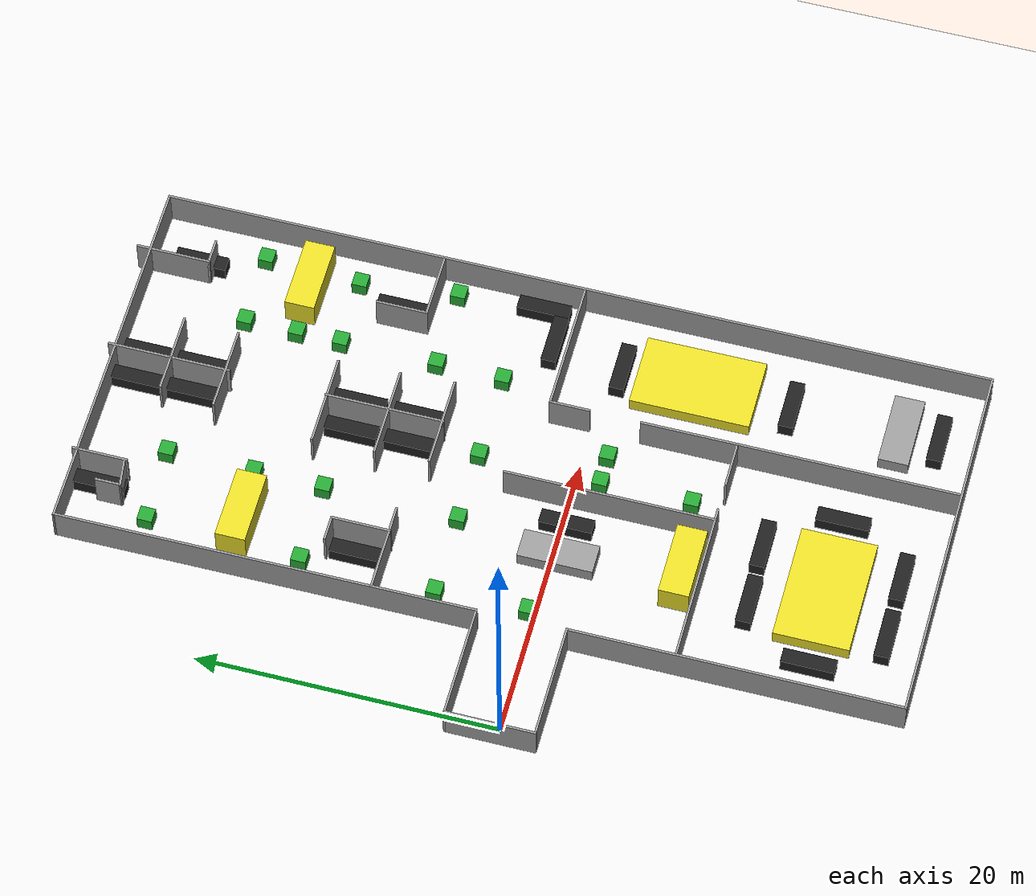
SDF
<sdf version="1.6">
 <world name="default">
  <light name="sun" type="directional">
   <pose>0 0 10 0 -0 0</pose>
   <diffuse>0.8 0.8 0.8 1</diffuse>
   <specular>0.2 0.2 0.2 1</specular>
   <attenuation>
    <range>1000</range>
    <constant>0.9</constant>
    <linear>0.01</linear>
    <quadratic>0.001</quadratic>
   </attenuation>
   <direction>-0.5 0.1 -0.9</direction>
  </light>
  <model name="ground_plane">
   <static>1</static>
   <link name="link">
    <collision name="collision">
     <geometry><plane><normal>0 0 1</normal><size>100 100</size></plane></geometry>
     <surface>
      <contact><collide_bitmask>65535</collide_bitmask></contact>
      <friction><ode><mu>100</mu><mu2>50</mu2></ode></friction>
     </surface>
    </collision>
    <visual name="visual">
     <cast_shadows>0</cast_shadows>
     <geometry><plane><normal>0 0 1</normal><size>100 100</size></plane></geometry>
     <material>
      <script><uri>file://media/materials/scripts/gazebo.material</uri><name>Gazebo/White</name></script>
     </material>
    </visual>
   </link>
  </model>
  <gravity>0 0 -9.8</gravity>
  <magnetic_field>6e-06 2.3e-05 -4.2e-05</magnetic_field>
  <atmosphere type="adiabatic"/>
  <physics name="default_physics" default="0" type="ode">
   <max_step_size>0.001</max_step_size>
   <real_time_factor>1</real_time_factor>
   <real_time_update_rate>1000</real_time_update_rate>
  </physics>
  <scene><ambient>0.4 0.4 0.4 1</ambient><background>0.7 0.7 0.7 1</background><shadows>1</shadows></scene>
  <audio><device>default</device></audio>
  <spherical_coordinates>
   <surface_model>EARTH_WGS84</surface_model>
   <latitude_deg>0</latitude_deg>
   <longitude_deg>0</longitude_deg>
   <elevation>0</elevation>
   <heading_deg>0</heading_deg>
  </spherical_coordinates>
  <model name="unit_box_0">
   <pose>8.5907 0.483494 0.499995 1e-05 -0 0</pose>
   <link name="link">
    <inertial>
     <mass>1</mass>
     <inertia>
      <ixx>0.166667</ixx>
      <ixy>0</ixy>
      <ixz>0</ixz>
      <iyy>0.166667</iyy>
      <iyz>0</iyz>
      <izz>0.166667</izz>
     </inertia>
    </inertial>
    <collision name="collision"><geometry><box><size>1 1 1</size></box></geometry></collision>
    <visual name="visual">
     <geometry><box><size>1 1 1</size></box></geometry>
     <material>
      <script><name>Gazebo/Green</name><uri>file://media/materials/scripts/gazebo.material</uri></script>
     </material>
    </visual>
   </link>
  </model>
  <model name="unit_box_1">
   <pose>8.42449 6.54835 0.499995 1e-05 -0 0</pose>
   <link name="link">
    <inertial>
     <mass>1</mass>
     <inertia>
      <ixx>0.166667</ixx>
      <ixy>0</ixy>
      <ixz>0</ixz>
      <iyy>0.166667</iyy>
      <iyz>0</iyz>
      <izz>0.166667</izz>
     </inertia>
    </inertial>
    <collision name="collision"><geometry><box><size>1 1 1</size></box></geometry></collision>
    <visual name="visual">
     <geometry><box><size>1 1 1</size></box></geometry>
     <material>
      <script><name>Gazebo/Green</name><uri>file://media/materials/scripts/gazebo.material</uri></script>
     </material>
    </visual>
   </link>
  </model>
  <model name="unit_box_2">
   <pose>14 6.54082 0.499995 0 1e-05 0</pose>
   <link name="link">
    <inertial>
     <mass>1</mass>
     <inertia>
      <ixx>0.166667</ixx>
      <ixy>0</ixy>
      <ixz>0</ixz>
      <iyy>0.166667</iyy>
      <iyz>0</iyz>
      <izz>0.166667</izz>
     </inertia>
    </inertial>
    <collision name="collision"><geometry><box><size>1 1 1</size></box></geometry></collision>
    <visual name="visual">
     <geometry><box><size>1 1 1</size></box></geometry>
     <material>
      <script><name>Gazebo/Green</name><uri>file://media/materials/scripts/gazebo.material</uri></script>
     </material>
    </visual>
   </link>
  </model>
  <model name="unit_box_3">
   <pose>19 6.5 0.499995 1e-05 -0 0</pose>
   <link name="link">
    <inertial>
     <mass>1</mass>
     <inertia>
      <ixx>0.166667</ixx>
      <ixy>0</ixy>
      <ixz>0</ixz>
      <iyy>0.166667</iyy>
      <iyz>0</iyz>
      <izz>0.166667</izz>
     </inertia>
    </inertial>
    <collision name="collision"><geometry><box><size>1 1 1</size></box></geometry></collision>
    <visual name="visual">
     <geometry><box><size>1 1 1</size></box></geometry>
     <material>
      <script><name>Gazebo/Green</name><uri>file://media/materials/scripts/gazebo.material</uri></script>
     </material>
    </visual>
   </link>
  </model>
  <model name="unit_box_4">
   <pose>24.9347 6.51333 0.499995 1e-05 -0 0</pose>
   <link name="link">
    <inertial>
     <mass>1</mass>
     <inertia>
      <ixx>0.166667</ixx>
      <ixy>0</ixy>
      <ixz>0</ixz>
      <iyy>0.166667</iyy>
      <iyz>0</iyz>
      <izz>0.166667</izz>
     </inertia>
    </inertial>
    <collision name="collision"><geometry><box><size>1 1 1</size></box></geometry></collision>
    <visual name="visual">
     <geometry><box><size>1 1 1</size></box></geometry>
     <material>
      <script><name>Gazebo/Green</name><uri>file://media/materials/scripts/gazebo.material</uri></script>
     </material>
    </visual>
   </link>
  </model>
  <model name="unit_box_5">
   <pose>25 11 0.499995 1e-05 -0 2e-06</pose>
   <link name="link">
    <inertial>
     <mass>1</mass>
     <inertia>
      <ixx>0.166667</ixx>
      <ixy>0</ixy>
      <ixz>0</ixz>
      <iyy>0.166667</iyy>
      <iyz>0</iyz>
      <izz>0.166667</izz>
     </inertia>
    </inertial>
    <collision name="collision"><geometry><box><size>1 1 1</size></box></geometry></collision>
    <visual name="visual">
     <geometry><box><size>1 1 1</size></box></geometry>
     <material>
      <script><name>Gazebo/Green</name><uri>file://media/materials/scripts/gazebo.material</uri></script>
     </material>
    </visual>
   </link>
  </model>
  <model name="unit_box_6">
   <pose>30.5176 11 0.499995 1e-05 -0 0</pose>
   <link name="link">
    <inertial>
     <mass>1</mass>
     <inertia>
      <ixx>0.166667</ixx>
      <ixy>0</ixy>
      <ixz>0</ixz>
      <iyy>0.166667</iyy>
      <iyz>0</iyz>
      <izz>0.166667</izz>
     </inertia>
    </inertial>
    <collision name="collision"><geometry><box><size>1 1 1</size></box></geometry></collision>
    <visual name="visual">
     <geometry><box><size>1 1 1</size></box></geometry>
     <material>
      <script><name>Gazebo/Green</name><uri>file://media/materials/scripts/gazebo.material</uri></script>
     </material>
    </visual>
   </link>
  </model>
  <model name="unit_box_8">
   <pose>21 -1.55682 0.499995 1e-05 -0 0</pose>
   <link name="link">
    <inertial>
     <mass>1</mass>
     <inertia>
      <ixx>0.166667</ixx>
      <ixy>0</ixy>
      <ixz>0</ixz>
      <iyy>0.166667</iyy>
      <iyz>0</iyz>
      <izz>0.166667</izz>
     </inertia>
    </inertial>
    <collision name="collision"><geometry><box><size>1 1 1</size></box></geometry></collision>
    <visual name="visual">
     <geometry><box><size>1 1 1</size></box></geometry>
     <material>
      <script><name>Gazebo/Green</name><uri>file://media/materials/scripts/gazebo.material</uri></script>
     </material>
    </visual>
   </link>
  </model>
  <model name="unit_box_9">
   <pose>19 -7.65932 0.499995 1e-05 -0 0</pose>
   <link name="link">
    <inertial>
     <mass>1</mass>
     <inertia>
      <ixx>0.166667</ixx>
      <ixy>0</ixy>
      <ixz>0</ixz>
      <iyy>0.166667</iyy>
      <iyz>0</iyz>
      <izz>0.166667</izz>
     </inertia>
    </inertial>
    <collision name="collision"><geometry><box><size>1 1 1</size></box></geometry></collision>
    <visual name="visual">
     <geometry><box><size>1 1 1</size></box></geometry>
     <material>
      <script><name>Gazebo/Green</name><uri>file://media/materials/scripts/gazebo.material</uri></script>
     </material>
    </visual>
   </link>
  </model>
  <model name="unit_box_10">
   <pose>25 17.5 0.499995 1e-05 -0 0</pose>
   <link name="link">
    <inertial>
     <mass>1</mass>
     <inertia>
      <ixx>0.166667</ixx>
      <ixy>0</ixy>
      <ixz>0</ixz>
      <iyy>0.166667</iyy>
      <iyz>0</iyz>
      <izz>0.166667</izz>
     </inertia>
    </inertial>
    <collision name="collision"><geometry><box><size>1 1 1</size></box></geometry></collision>
    <visual name="visual">
     <geometry><box><size>1 1 1</size></box></geometry>
     <material>
      <script><name>Gazebo/Green</name><uri>file://media/materials/scripts/gazebo.material</uri></script>
     </material>
    </visual>
   </link>
  </model>
  <model name="unit_box_11">
   <pose>25 20.4899 0.5 0 -0 0</pose>
   <link name="link">
    <inertial>
     <mass>1</mass>
     <inertia>
      <ixx>0.166667</ixx>
      <ixy>0</ixy>
      <ixz>0</ixz>
      <iyy>0.166667</iyy>
      <iyz>0</iyz>
      <izz>0.166667</izz>
     </inertia>
    </inertial>
    <collision name="collision"><geometry><box><size>1 1 1</size></box></geometry></collision>
    <visual name="visual">
     <geometry><box><size>1 1 1</size></box></geometry>
     <material>
      <script><name>Gazebo/Green</name><uri>file://media/materials/scripts/gazebo.material</uri></script>
     </material>
    </visual>
   </link>
  </model>
  <model name="unit_box_12">
   <pose>25 24 0.499995 0 1e-05 0</pose>
   <link name="link">
    <inertial>
     <mass>1</mass>
     <inertia>
      <ixx>0.166667</ixx>
      <ixy>0</ixy>
      <ixz>0</ixz>
      <iyy>0.166667</iyy>
      <iyz>0</iyz>
      <izz>0.166667</izz>
     </inertia>
    </inertial>
    <collision name="collision"><geometry><box><size>1 1 1</size></box></geometry></collision>
    <visual name="visual">
     <geometry><box><size>1 1 1</size></box></geometry>
     <material>
      <script><name>Gazebo/Green</name><uri>file://media/materials/scripts/gazebo.material</uri></script>
     </material>
    </visual>
   </link>
  </model>
  <model name="unit_box_13">
   <pose>29.7257 17.5 0.499995 0 1e-05 0</pose>
   <link name="link">
    <inertial>
     <mass>1</mass>
     <inertia>
      <ixx>0.166667</ixx>
      <ixy>0</ixy>
      <ixz>0</ixz>
      <iyy>0.166667</iyy>
      <iyz>0</iyz>
      <izz>0.166667</izz>
     </inertia>
    </inertial>
    <collision name="collision"><geometry><box><size>1 1 1</size></box></geometry></collision>
    <visual name="visual">
     <geometry><box><size>1 1 1</size></box></geometry>
     <material>
      <script><name>Gazebo/Green</name><uri>file://media/materials/scripts/gazebo.material</uri></script>
     </material>
    </visual>
   </link>
  </model>
  <model name="unit_box_14">
   <pose>30 24 0.499995 1e-05 -0 0</pose>
   <link name="link">
    <inertial>
     <mass>1</mass>
     <inertia>
      <ixx>0.166667</ixx>
      <ixy>0</ixy>
      <ixz>0</ixz>
      <iyy>0.166667</iyy>
      <iyz>0</iyz>
      <izz>0.166667</izz>
     </inertia>
    </inertial>
    <collision name="collision"><geometry><box><size>1 1 1</size></box></geometry></collision>
    <visual name="visual">
     <geometry><box><size>1 1 1</size></box></geometry>
     <material>
      <script><name>Gazebo/Green</name><uri>file://media/materials/scripts/gazebo.material</uri></script>
     </material>
    </visual>
   </link>
  </model>
  <model name="unit_box_15">
   <pose>14 20.1761 0.499995 0 1e-05 0</pose>
   <link name="link">
    <inertial>
     <mass>1</mass>
     <inertia>
      <ixx>0.166667</ixx>
      <ixy>0</ixy>
      <ixz>0</ixz>
      <iyy>0.166667</iyy>
      <iyz>0</iyz>
      <izz>0.166667</izz>
     </inertia>
    </inertial>
    <collision name="collision"><geometry><box><size>1 1 1</size></box></geometry></collision>
    <visual name="visual">
     <geometry><box><size>1 1 1</size></box></geometry>
     <material>
      <script><name>Gazebo/Green</name><uri>file://media/materials/scripts/gazebo.material</uri></script>
     </material>
    </visual>
   </link>
  </model>
  <model name="unit_box_16">
   <pose>14 15.5 0.499995 1e-05 -0 0</pose>
   <link name="link">
    <inertial>
     <mass>1</mass>
     <inertia>
      <ixx>0.166667</ixx>
      <ixy>0</ixy>
      <ixz>0</ixz>
      <iyy>0.166667</iyy>
      <iyz>0</iyz>
      <izz>0.166667</izz>
     </inertia>
    </inertial>
    <collision name="collision"><geometry><box><size>1 1 1</size></box></geometry></collision>
    <visual name="visual">
     <geometry><box><size>1 1 1</size></box></geometry>
     <material>
      <script><name>Gazebo/Green</name><uri>file://media/materials/scripts/gazebo.material</uri></script>
     </material>
    </visual>
   </link>
  </model>
  <model name="unit_box_17">
   <pose>14 26 0.499995 1e-05 -0 0</pose>
   <link name="link">
    <inertial>
     <mass>1</mass>
     <inertia>
      <ixx>0.166667</ixx>
      <ixy>0</ixy>
      <ixz>0</ixz>
      <iyy>0.166667</iyy>
      <iyz>0</iyz>
      <izz>0.166667</izz>
     </inertia>
    </inertial>
    <collision name="collision"><geometry><box><size>1 1 1</size></box></geometry></collision>
    <visual name="visual">
     <geometry><box><size>1 1 1</size></box></geometry>
     <material>
      <script><name>Gazebo/Green</name><uri>file://media/materials/scripts/gazebo.material</uri></script>
     </material>
    </visual>
   </link>
  </model>
  <model name="unit_box_18">
   <pose>8.86475 25.8424 0.499995 1e-05 0 -0.000109</pose>
   <link name="link">
    <inertial>
     <mass>1</mass>
     <inertia>
      <ixx>0.166667</ixx>
      <ixy>0</ixy>
      <ixz>0</ixz>
      <iyy>0.166667</iyy>
      <iyz>0</iyz>
      <izz>0.166667</izz>
     </inertia>
    </inertial>
    <collision name="collision"><geometry><box><size>1 1 1</size></box></geometry></collision>
    <visual name="visual">
     <geometry><box><size>1 1 1</size></box></geometry>
     <material>
      <script><name>Gazebo/Green</name><uri>file://media/materials/scripts/gazebo.material</uri></script>
     </material>
    </visual>
   </link>
  </model>
  <model name="unit_box_19">
   <pose>8.49751 15.5 0.499995 0 1e-05 0</pose>
   <link name="link">
    <inertial>
     <mass>1</mass>
     <inertia>
      <ixx>0.166667</ixx>
      <ixy>0</ixy>
      <ixz>0</ixz>
      <iyy>0.166667</iyy>
      <iyz>0</iyz>
      <izz>0.166667</izz>
     </inertia>
    </inertial>
    <collision name="collision"><geometry><box><size>1 1 1</size></box></geometry></collision>
    <visual name="visual">
     <geometry><box><size>1 1 1</size></box></geometry>
     <material>
      <script><name>Gazebo/Green</name><uri>file://media/materials/scripts/gazebo.material</uri></script>
     </material>
    </visual>
   </link>
  </model>
  <model name="unit_box_20">
   <pose>18.9739 -1.58777 0.499995 1e-05 -0 0</pose>
   <link name="link">
    <inertial>
     <mass>1</mass>
     <inertia>
      <ixx>0.166667</ixx>
      <ixy>0</ixy>
      <ixz>0</ixz>
      <iyy>0.166667</iyy>
      <iyz>0</iyz>
      <izz>0.166667</izz>
     </inertia>
    </inertial>
    <collision name="collision"><geometry><box><size>1 1 1</size></box></geometry></collision>
    <visual name="visual">
     <geometry><box><size>1 1 1</size></box></geometry>
     <material>
      <script><name>Gazebo/Green</name><uri>file://media/materials/scripts/gazebo.material</uri></script>
     </material>
    </visual>
   </link>
  </model>
  <model name="office_1">
   <pose>15.4743 3.41032 0 0 -0 0</pose>
   <link name="Wall_0">
    <collision name="Wall_0_Collision">
     <geometry><box><size>7.75 0.15 2.5</size></box></geometry>
     <pose>0 0 1.25 0 -0 0</pose>
    </collision>
    <visual name="Wall_0_Visual">
     <pose>0 0 1.25 0 -0 0</pose>
     <geometry><box><size>7.75 0.15 2.5</size></box></geometry>
     <material>
      <script><uri>file://media/materials/scripts/gazebo.material</uri><name>Gazebo/Grey</name></script>
      <ambient>1 1 1 1</ambient>
     </material>
     <meta><layer>0</layer></meta>
    </visual>
    <pose>-12.5043 -5.95032 0 0 -0 0</pose>
   </link>
   <link name="Wall_10">
    <collision name="Wall_10_Collision">
     <geometry><box><size>6 0.15 2.5</size></box></geometry>
     <pose>0 0 1.25 0 -0 0</pose>
    </collision>
    <visual name="Wall_10_Visual">
     <pose>0 0 1.25 0 -0 0</pose>
     <geometry><box><size>6 0.15 2.5</size></box></geometry>
     <material>
      <script><uri>file://media/materials/scripts/gazebo.material</uri><name>Gazebo/Grey</name></script>
      <ambient>1 1 1 1</ambient>
     </material>
     <meta><layer>0</layer></meta>
    </visual>
    <pose>-16.3956 -3.00177 0 0 -0 -1.5708</pose>
   </link>
   <link name="Wall_2">
    <collision name="Wall_2_Collision">
     <geometry><box><size>22 0.15 2.5</size></box></geometry>
     <pose>0 0 1.25 0 -0 0</pose>
    </collision>
    <visual name="Wall_2_Visual">
     <pose>0 0 1.25 0 -0 0</pose>
     <geometry><box><size>22 0.15 2.5</size></box></geometry>
     <material>
      <script><uri>file://media/materials/scripts/gazebo.material</uri><name>Gazebo/Grey</name></script>
      <ambient>1 1 1 1</ambient>
     </material>
     <meta><layer>0</layer></meta>
    </visual>
    <pose>-8.70435 -16.8753 0 0 -0 -1.5708</pose>
   </link>
   <link name="Wall_3">
    <collision name="Wall_3_Collision">
     <geometry><box><size>25.25 0.15 2.5</size></box></geometry>
     <pose>0 0 1.25 0 -0 0</pose>
    </collision>
    <visual name="Wall_3_Visual">
     <pose>0 0 1.25 0 -0 0</pose>
     <geometry><box><size>25.25 0.15 2.5</size></box></geometry>
     <material>
      <script><uri>file://media/materials/scripts/gazebo.material</uri><name>Gazebo/Grey</name></script>
      <ambient>1 1 1 1</ambient>
     </material>
     <meta><layer>0</layer></meta>
    </visual>
    <pose>3.84565 -27.8003 0 0 -0 0</pose>
   </link>
   <link name="Wall_5">
    <collision name="Wall_5_Collision">
     <geometry><box><size>55.75 0.15 2.5</size></box></geometry>
     <pose>0 0 1.25 0 -0 0</pose>
    </collision>
    <visual name="Wall_5_Visual">
     <pose>0 0 1.25 0 -0 0</pose>
     <geometry><box><size>55.75 0.15 2.5</size></box></geometry>
     <material>
      <script><uri>file://media/materials/scripts/gazebo.material</uri><name>Gazebo/Grey</name></script>
      <ambient>1 1 1 1</ambient>
     </material>
     <meta><layer>0</layer></meta>
    </visual>
    <pose>16.3957 -0.000322 0 0 -0 1.5708</pose>
   </link>
   <link name="Wall_6">
    <collision name="Wall_6_Collision">
     <geometry><box><size>25.5 0.15 2.5</size></box></geometry>
     <pose>0 0 1.25 0 -0 0</pose>
    </collision>
    <visual name="Wall_6_Visual">
     <pose>0 0 1.25 0 -0 0</pose>
     <geometry><box><size>25.5 0.15 2.5</size></box></geometry>
     <material>
      <script><uri>file://media/materials/scripts/gazebo.material</uri><name>Gazebo/Grey</name></script>
      <ambient>1 1 1 1</ambient>
     </material>
     <meta><layer>0</layer></meta>
    </visual>
    <pose>3.72065 27.7997 0 0 -0 3.14159</pose>
   </link>
   <link name="Wall_7">
    <collision name="Wall_7_Collision">
     <geometry><box><size>28.0269 0.15 2.5</size></box></geometry>
     <pose>0 0 1.25 0 -0 0</pose>
    </collision>
    <visual name="Wall_7_Visual">
     <pose>0 0 1.25 0 -0 0</pose>
     <geometry><box><size>28.0269 0.15 2.5</size></box></geometry>
     <material>
      <script><uri>file://media/materials/scripts/gazebo.material</uri><name>Gazebo/Grey</name></script>
      <ambient>1 1 1 1</ambient>
     </material>
     <meta><layer>0</layer></meta>
    </visual>
    <pose>-8.88935 13.8617 0 0 -0 -1.56613</pose>
   </link>
   <link name="Wall_8">
    <collision name="Wall_8_Collision">
     <geometry><box><size>7.7213 0.15 2.5</size></box></geometry>
     <pose>0 0 1.25 0 -0 0</pose>
    </collision>
    <visual name="Wall_8_Visual">
     <pose>0 0 1.25 0 -0 0</pose>
     <geometry><box><size>7.7213 0.15 2.5</size></box></geometry>
     <material>
      <script><uri>file://media/materials/scripts/gazebo.material</uri><name>Gazebo/Grey</name></script>
      <ambient>1 1 1 1</ambient>
     </material>
     <meta><layer>0</layer></meta>
    </visual>
    <pose>-12.61 -0.076547 0 0 -0 -3.14153</pose>
   </link>
   <static>1</static>
  </model>
  <model name="office_2">
   <pose>19.223 3.91729 0 0 -0 0</pose>
   <link name="Wall_11">
    <collision name="Wall_11_Collision">
     <geometry><box><size>6.5 0.15 2.5</size></box></geometry>
     <pose>0 0 1.25 0 -0 0</pose>
    </collision>
    <visual name="Wall_11_Visual">
     <pose>0 0 1.25 0 -0 0</pose>
     <geometry><box><size>6.5 0.15 2.5</size></box></geometry>
     <material>
      <script><uri>file://media/materials/scripts/gazebo.material</uri><name>Gazebo/Grey</name></script>
      <ambient>1 1 1 1</ambient>
     </material>
     <meta><layer>0</layer></meta>
    </visual>
    <pose>3.61683 -10.3722 0 0 -0 1.5708</pose>
   </link>
   <link name="Wall_13">
    <collision name="Wall_13_Collision">
     <geometry><box><size>2.75 0.15 2.5</size></box></geometry>
     <pose>0 0 1.25 0 -0 0</pose>
    </collision>
    <visual name="Wall_13_Visual">
     <pose>0 0 1.25 0 -0 0</pose>
     <geometry><box><size>2.75 0.15 2.5</size></box></geometry>
     <material>
      <script><uri>file://media/materials/scripts/gazebo.material</uri><name>Gazebo/Grey</name></script>
      <ambient>1 1 1 1</ambient>
     </material>
     <meta><layer>0</layer></meta>
    </visual>
    <pose>3.64403 -2.41016 0 0 -0 1.5708</pose>
   </link>
   <link name="Wall_14">
    <collision name="Wall_14_Collision">
     <geometry><box><size>9 0.15 2.5</size></box></geometry>
     <pose>0 0 1.25 0 -0 0</pose>
    </collision>
    <visual name="Wall_14_Visual">
     <pose>0 0 1.25 0 -0 0</pose>
     <geometry><box><size>9 0.15 2.5</size></box></geometry>
     <material>
      <script><uri>file://media/materials/scripts/gazebo.material</uri><name>Gazebo/Grey</name></script>
      <ambient>1 1 1 1</ambient>
     </material>
     <meta><layer>0</layer></meta>
    </visual>
    <pose>8.06904 -1.11016 0 0 -0 0</pose>
   </link>
   <link name="Wall_20">
    <collision name="Wall_20_Collision">
     <geometry><box><size>14 0.15 2.5</size></box></geometry>
     <pose>0 0 1.25 0 -0 0</pose>
    </collision>
    <visual name="Wall_20_Visual">
     <pose>0 0 1.25 0 -0 0</pose>
     <geometry><box><size>14 0.15 2.5</size></box></geometry>
     <material>
      <script><uri>file://media/materials/scripts/gazebo.material</uri><name>Gazebo/Grey</name></script>
      <ambient>1 1 1 1</ambient>
     </material>
     <meta><layer>0</layer></meta>
    </visual>
    <pose>-2.23045 -6.54514 0 0 -0 1.5708</pose>
   </link>
   <link name="Wall_29">
    <collision name="Wall_29_Collision">
     <geometry><box><size>6 0.15 2.5</size></box></geometry>
     <pose>0 0 1.25 0 -0 0</pose>
    </collision>
    <visual name="Wall_29_Visual">
     <pose>0 0 1.25 0 -0 0</pose>
     <geometry><box><size>6 0.15 2.5</size></box></geometry>
     <material>
      <script><uri>file://media/materials/scripts/gazebo.material</uri><name>Gazebo/Grey</name></script>
      <ambient>1 1 1 1</ambient>
     </material>
     <meta><layer>0</layer></meta>
    </visual>
    <pose>-9.61448 6.29314 0 0 -0 0</pose>
   </link>
   <link name="Wall_3">
    <collision name="Wall_3_Collision">
     <geometry><box><size>11 0.15 2.5</size></box></geometry>
     <pose>0 0 1.25 0 -0 0</pose>
    </collision>
    <visual name="Wall_3_Visual">
     <pose>0 0 1.25 0 -0 0</pose>
     <geometry><box><size>11 0.15 2.5</size></box></geometry>
     <material>
      <script><uri>file://media/materials/scripts/gazebo.material</uri><name>Gazebo/Grey</name></script>
      <ambient>1 1 1 1</ambient>
     </material>
     <meta><layer>0</layer></meta>
    </visual>
    <pose>-6.89347 -13.5267 0 0 -0 0</pose>
   </link>
   <link name="Wall_32">
    <collision name="Wall_32_Collision">
     <geometry><box><size>4 0.15 2.5</size></box></geometry>
     <pose>0 0 1.25 0 -0 0</pose>
    </collision>
    <visual name="Wall_32_Visual">
     <pose>0 0 1.25 0 -0 0</pose>
     <geometry><box><size>4 0.15 2.5</size></box></geometry>
     <material>
      <script><uri>file://media/materials/scripts/gazebo.material</uri><name>Gazebo/Grey</name></script>
      <ambient>1 1 1 1</ambient>
     </material>
     <meta><layer>0</layer></meta>
    </visual>
    <pose>-8.37317 8.17348 0 0 -0 1.5708</pose>
   </link>
   <link name="Wall_33">
    <collision name="Wall_33_Collision">
     <geometry><box><size>1.75 0.15 2.5</size></box></geometry>
     <pose>0 0 1.25 0 -0 0</pose>
    </collision>
    <visual name="Wall_33_Visual">
     <pose>0 0 1.25 0 -0 0</pose>
     <geometry><box><size>1.75 0.15 2.5</size></box></geometry>
     <material>
      <script><uri>file://media/materials/scripts/gazebo.material</uri><name>Gazebo/Grey</name></script>
      <ambient>1 1 1 1</ambient>
     </material>
     <meta><layer>0</layer></meta>
    </visual>
    <pose>-9.17316 10.0985 0 0 -0 3.14159</pose>
   </link>
   <link name="Wall_47">
    <collision name="Wall_47_Collision">
     <geometry><box><size>3.75 0.15 2.5</size></box></geometry>
     <pose>0 0 1.25 0 -0 0</pose>
    </collision>
    <visual name="Wall_47_Visual">
     <pose>0 0 1.25 0 -0 0</pose>
     <geometry><box><size>3.75 0.15 2.5</size></box></geometry>
     <material>
      <script><uri>file://media/materials/scripts/gazebo.material</uri><name>Gazebo/Grey</name></script>
      <ambient>1 1 1 1</ambient>
     </material>
     <meta><layer>0</layer></meta>
    </visual>
    <pose>-7.63999 25.7901 0 0 -0 -1.5708</pose>
   </link>
   <link name="Wall_48">
    <collision name="Wall_48_Collision">
     <geometry><box><size>2.05601 0.15 2.5</size></box></geometry>
     <pose>0 0 1.25 0 -0 0</pose>
    </collision>
    <visual name="Wall_48_Visual">
     <pose>0 0 1.25 0 -0 0</pose>
     <geometry><box><size>2.05601 0.15 2.5</size></box></geometry>
     <material>
      <script><uri>file://media/materials/scripts/gazebo.material</uri><name>Gazebo/Grey</name></script>
      <ambient>1 1 1 1</ambient>
     </material>
     <meta><layer>0</layer></meta>
    </visual>
    <pose>-8.5823 23.9901 0 0 -0 -2.9917</pose>
   </link>
   <link name="Wall_49">
    <collision name="Wall_49_Collision">
     <geometry><box><size>1.75 0.15 2.5</size></box></geometry>
     <pose>0 0 1.25 0 -0 0</pose>
    </collision>
    <visual name="Wall_49_Visual">
     <pose>0 0 1.25 0 -0 0</pose>
     <geometry><box><size>1.75 0.15 2.5</size></box></geometry>
     <material>
      <script><uri>file://media/materials/scripts/gazebo.material</uri><name>Gazebo/Grey</name></script>
      <ambient>1 1 1 1</ambient>
     </material>
     <meta><layer>0</layer></meta>
    </visual>
    <pose>-9.52462 24.6478 0 0 -0 1.5708</pose>
   </link>
   <link name="Wall_57">
    <collision name="Wall_57_Collision">
     <geometry><box><size>5 0.15 2.5</size></box></geometry>
     <pose>0 0 1.25 0 -0 0</pose>
    </collision>
    <visual name="Wall_57_Visual">
     <pose>0 0 1.25 0 -0 0</pose>
     <geometry><box><size>5 0.15 2.5</size></box></geometry>
     <material>
      <script><uri>file://media/materials/scripts/gazebo.material</uri><name>Gazebo/Grey</name></script>
      <ambient>1 1 1 1</ambient>
     </material>
     <meta><layer>0</layer></meta>
    </visual>
    <pose>8.35473 25.7222 0 0 -0 -1.5708</pose>
   </link>
   <link name="Wall_58">
    <collision name="Wall_58_Collision">
     <geometry><box><size>1.75 0.15 2.5</size></box></geometry>
     <pose>0 0 1.25 0 -0 0</pose>
    </collision>
    <visual name="Wall_58_Visual">
     <pose>0 0 1.25 0 -0 0</pose>
     <geometry><box><size>1.75 0.15 2.5</size></box></geometry>
     <material>
      <script><uri>file://media/materials/scripts/gazebo.material</uri><name>Gazebo/Grey</name></script>
      <ambient>1 1 1 1</ambient>
     </material>
     <meta><layer>0</layer></meta>
    </visual>
    <pose>9.15472 23.2972 0 0 -0 0</pose>
   </link>
   <link name="Wall_60">
    <collision name="Wall_60_Collision">
     <geometry><box><size>8.25 0.15 2.5</size></box></geometry>
     <pose>0 0 1.25 0 -0 0</pose>
    </collision>
    <visual name="Wall_60_Visual">
     <pose>0 0 1.25 0 -0 0</pose>
     <geometry><box><size>8.25 0.15 2.5</size></box></geometry>
     <material>
      <script><uri>file://media/materials/scripts/gazebo.material</uri><name>Gazebo/Grey</name></script>
      <ambient>1 1 1 1</ambient>
     </material>
     <meta><layer>0</layer></meta>
    </visual>
    <pose>0.578927 23.6502 0 0 -0 -1.5708</pose>
   </link>
   <link name="Wall_65">
    <collision name="Wall_65_Collision">
     <geometry><box><size>5.75 0.15 2.5</size></box></geometry>
     <pose>0 0 1.25 0 -0 0</pose>
    </collision>
    <visual name="Wall_65_Visual">
     <pose>0 0 1.25 0 -0 0</pose>
     <geometry><box><size>5.75 0.15 2.5</size></box></geometry>
     <material>
      <script><uri>file://media/materials/scripts/gazebo.material</uri><name>Gazebo/Grey</name></script>
      <ambient>1 1 1 1</ambient>
     </material>
     <meta><layer>0</layer></meta>
    </visual>
    <pose>0.659823 19.8318 0 0 -0 0</pose>
   </link>
   <link name="Wall_69">
    <collision name="Wall_69_Collision">
     <geometry><box><size>5.5 0.15 2.5</size></box></geometry>
     <pose>0 0 1.25 0 -0 0</pose>
    </collision>
    <visual name="Wall_69_Visual">
     <pose>0 0 1.25 0 -0 0</pose>
     <geometry><box><size>5.5 0.15 2.5</size></box></geometry>
     <material>
      <script><uri>file://media/materials/scripts/gazebo.material</uri><name>Gazebo/Grey</name></script>
      <ambient>1 1 1 1</ambient>
     </material>
     <meta><layer>0</layer></meta>
    </visual>
    <pose>0.961778 23.5321 0 0 -0 0</pose>
   </link>
   <link name="Wall_71">
    <collision name="Wall_71_Collision">
     <geometry><box><size>8 0.15 2.5</size></box></geometry>
     <pose>0 0 1.25 0 -0 0</pose>
    </collision>
    <visual name="Wall_71_Visual">
     <pose>0 0 1.25 0 -0 0</pose>
     <geometry><box><size>8 0.15 2.5</size></box></geometry>
     <material>
      <script><uri>file://media/materials/scripts/gazebo.material</uri><name>Gazebo/Grey</name></script>
      <ambient>1 1 1 1</ambient>
     </material>
     <meta><layer>0</layer></meta>
    </visual>
    <pose>0.422198 9.09895 0 0 -0 -1.5708</pose>
   </link>
   <link name="Wall_73">
    <collision name="Wall_73_Collision">
     <geometry><box><size>6.25 0.15 2.5</size></box></geometry>
     <pose>0 0 1.25 0 -0 0</pose>
    </collision>
    <visual name="Wall_73_Visual">
     <pose>0 0 1.25 0 -0 0</pose>
     <geometry><box><size>6.25 0.15 2.5</size></box></geometry>
     <material>
      <script><uri>file://media/materials/scripts/gazebo.material</uri><name>Gazebo/Grey</name></script>
      <ambient>1 1 1 1</ambient>
     </material>
     <meta><layer>0</layer></meta>
    </visual>
    <pose>0.373353 5.22741 0 0 -0 0</pose>
   </link>
   <link name="Wall_8">
    <collision name="Wall_8_Collision">
     <geometry><box><size>3.25 0.15 2.5</size></box></geometry>
     <pose>0 0 1.25 0 -0 0</pose>
    </collision>
    <visual name="Wall_8_Visual">
     <pose>0 0 1.25 0 -0 0</pose>
     <geometry><box><size>3.25 0.15 2.5</size></box></geometry>
     <material>
      <script><uri>file://media/materials/scripts/gazebo.material</uri><name>Gazebo/Grey</name></script>
      <ambient>1 1 1 1</ambient>
     </material>
     <meta><layer>0</layer></meta>
    </visual>
    <pose>2.06683 -13.5472 0 0 -0 0</pose>
   </link>
   <link name="Wall_82">
    <collision name="Wall_82_Collision">
     <geometry><box><size>6.25 0.15 2.5</size></box></geometry>
     <pose>0 0 1.25 0 -0 0</pose>
    </collision>
    <visual name="Wall_82_Visual">
     <pose>0 0 1.25 0 -0 0</pose>
     <geometry><box><size>6.25 0.15 2.5</size></box></geometry>
     <material>
      <script><uri>file://media/materials/scripts/gazebo.material</uri><name>Gazebo/Grey</name></script>
      <ambient>1 1 1 1</ambient>
     </material>
     <meta><layer>0</layer></meta>
    </visual>
    <pose>0.163686 8.82451 0 0 -0 0</pose>
   </link>
   <link name="Wall_84">
    <collision name="Wall_84_Collision">
     <geometry><box><size>6.25 0.15 2.5</size></box></geometry>
     <pose>0 0 1.25 0 -0 0</pose>
    </collision>
    <visual name="Wall_84_Visual">
     <pose>0 0 1.25 0 -0 0</pose>
     <geometry><box><size>6.25 0.15 2.5</size></box></geometry>
     <material>
      <script><uri>file://media/materials/scripts/gazebo.material</uri><name>Gazebo/Grey</name></script>
      <ambient>1 1 1 1</ambient>
     </material>
     <meta><layer>0</layer></meta>
    </visual>
    <pose>0.015128 12.9567 0 0 -0 0</pose>
   </link>
   <link name="Wall_89">
    <collision name="Wall_89_Collision">
     <geometry><box><size>4.5 0.15 2.5</size></box></geometry>
     <pose>0 0 1.25 0 -0 0</pose>
    </collision>
    <visual name="Wall_89_Visual">
     <pose>0 0 1.25 0 -0 0</pose>
     <geometry><box><size>4.5 0.15 2.5</size></box></geometry>
     <material>
      <script><uri>file://media/materials/scripts/gazebo.material</uri><name>Gazebo/Grey</name></script>
      <ambient>1 1 1 1</ambient>
     </material>
     <meta><layer>0</layer></meta>
    </visual>
    <pose>10.3645 8.4266 0 0 -0 0</pose>
   </link>
   <link name="Wall_9">
    <collision name="Wall_9_Collision">
     <geometry><box><size>14.75 0.15 2.5</size></box></geometry>
     <pose>0 0 1.25 0 -0 0</pose>
    </collision>
    <visual name="Wall_9_Visual">
     <pose>0 0 1.25 0 -0 0</pose>
     <geometry><box><size>14.75 0.15 2.5</size></box></geometry>
     <material>
      <script><uri>file://media/materials/scripts/gazebo.material</uri><name>Gazebo/Grey</name></script>
      <ambient>1 1 1 1</ambient>
     </material>
     <meta><layer>0</layer></meta>
    </visual>
    <pose>3.61683 -20.8472 0 0 -0 -1.5708</pose>
   </link>
   <link name="Wall_91">
    <collision name="Wall_91_Collision">
     <geometry><box><size>3.5 0.15 2.5</size></box></geometry>
     <pose>0 0 1.25 0 -0 0</pose>
    </collision>
    <visual name="Wall_91_Visual">
     <pose>0 0 1.25 0 -0 0</pose>
     <geometry><box><size>3.5 0.15 2.5</size></box></geometry>
     <material>
      <script><uri>file://media/materials/scripts/gazebo.material</uri><name>Gazebo/Grey</name></script>
      <ambient>1 1 1 1</ambient>
     </material>
     <meta><layer>0</layer></meta>
    </visual>
    <pose>8.18948 10.1016 0 0 -0 1.5708</pose>
   </link>
   <static>1</static>
  </model>
  <model name="cabinet">
   <pose>10.554 19.9803 0.99882 0 0.000472 -2e-06</pose>
   <link name="link">
    <inertial>
     <mass>1</mass>
     <inertia>
      <ixx>0.166667</ixx>
      <ixy>0</ixy>
      <ixz>0</ixz>
      <iyy>0.166667</iyy>
      <iyz>0</iyz>
      <izz>0.166667</izz>
     </inertia>
    </inertial>
    <collision name="collision"><geometry><box><size>5 2 2</size></box></geometry></collision>
    <visual name="visual">
     <geometry><box><size>5 2 2</size></box></geometry>
     <material>
      <script><name>Gazebo/Yellow</name><uri>file://media/materials/scripts/gazebo.material</uri></script>
     </material>
    </visual>
   </link>
  </model>
  <model name="unit_box_21">
   <pose>27.7162 -5.86806 0.483136 -0.004219 -0 -0</pose>
   <link name="link">
    <inertial>
     <mass>1</mass>
     <inertia>
      <ixx>0.166667</ixx>
      <ixy>0</ixy>
      <ixz>0</ixz>
      <iyy>0.166667</iyy>
      <iyz>0</iyz>
      <izz>0.166667</izz>
     </inertia>
    </inertial>
    <collision name="collision"><geometry><box><size>5 8 1</size></box></geometry></collision>
    <visual name="visual">
     <geometry><box><size>5 8 1</size></box></geometry>
     <material>
      <script><name>Gazebo/Yellow</name><uri>file://media/materials/scripts/gazebo.material</uri></script>
     </material>
    </visual>
   </link>
  </model>
  <model name="cabinet_clone">
   <pose>28.6292 20.6379 0.99882 0 0.000472 2e-06</pose>
   <link name="link">
    <inertial>
     <mass>1</mass>
     <inertia>
      <ixx>0.166667</ixx>
      <ixy>0</ixy>
      <ixz>0</ixz>
      <iyy>0.166667</iyy>
      <iyz>0</iyz>
      <izz>0.166667</izz>
     </inertia>
    </inertial>
    <collision name="collision"><geometry><box><size>5 2 2</size></box></geometry></collision>
    <visual name="visual">
     <geometry><box><size>5 2 2</size></box></geometry>
     <material>
      <script><name>Gazebo/Yellow</name><uri>file://media/materials/scripts/gazebo.material</uri></script>
     </material>
    </visual>
   </link>
  </model>
  <model name="unit_box_21_clone">
   <pose>14.6997 -17.4409 0.483136 -0.004219 -0 -1.5708</pose>
   <link name="link">
    <inertial>
     <mass>1</mass>
     <inertia>
      <ixx>0.166667</ixx>
      <ixy>0</ixy>
      <ixz>0</ixz>
      <iyy>0.166667</iyy>
      <iyz>0</iyz>
      <izz>0.166667</izz>
     </inertia>
    </inertial>
    <collision name="collision"><geometry><box><size>5 8 1</size></box></geometry></collision>
    <visual name="visual">
     <geometry><box><size>5 8 1</size></box></geometry>
     <material>
      <script><name>Gazebo/Yellow</name><uri>file://media/materials/scripts/gazebo.material</uri></script>
     </material>
    </visual>
   </link>
  </model>
  <model name="unit_box_7">
   <pose>13.0472 -0.339498 0.497878 -0.000849 -0 -0</pose>
   <link name="link">
    <inertial>
     <mass>1</mass>
     <inertia>
      <ixx>0.166667</ixx>
      <ixy>0</ixy>
      <ixz>0</ixz>
      <iyy>0.166667</iyy>
      <iyz>0</iyz>
      <izz>0.166667</izz>
     </inertia>
    </inertial>
    <collision name="collision"><geometry><box><size>2 5 1</size></box></geometry></collision>
    <visual name="visual">
     <geometry><box><size>2 5 1</size></box></geometry>
     <material>
      <script><name>Gazebo/Grey</name><uri>file://media/materials/scripts/gazebo.material</uri></script>
     </material>
    </visual>
   </link>
  </model>
  <model name="cabinet_clone_clone">
   <pose>13.8176 -8.31913 0.99882 0 0.000472 2e-06</pose>
   <link name="link">
    <inertial>
     <mass>1</mass>
     <inertia>
      <ixx>0.166667</ixx>
      <ixy>0</ixy>
      <ixz>0</ixz>
      <iyy>0.166667</iyy>
      <iyz>0</iyz>
      <izz>0.166667</izz>
     </inertia>
    </inertial>
    <collision name="collision"><geometry><box><size>5 2 2</size></box></geometry></collision>
    <visual name="visual">
     <geometry><box><size>5 2 2</size></box></geometry>
     <material>
      <script><name>Gazebo/Yellow</name><uri>file://media/materials/scripts/gazebo.material</uri></script>
     </material>
    </visual>
   </link>
  </model>
  <model name="unit_box_clone">
   <pose>20.7214 14.9976 0.499937 -5.1e-05 -0 -0</pose>
   <link name="link">
    <inertial>
     <mass>1</mass>
     <inertia>
      <ixx>0.166667</ixx>
      <ixy>0</ixy>
      <ixz>0</ixz>
      <iyy>0.166667</iyy>
      <iyz>0</iyz>
      <izz>0.166667</izz>
     </inertia>
    </inertial>
    <collision name="collision"><geometry><box><size>2 2.5 1</size></box></geometry></collision>
    <visual name="visual">
     <geometry><box><size>1 3.5 1</size></box></geometry>
     <material>
      <script><name>Gazebo/Black</name><uri>file://media/materials/scripts/gazebo.material</uri></script>
     </material>
    </visual>
   </link>
  </model>
  <model name="unit_box_clone_clone">
   <pose>20.7205 11 0.499986 0 1.4e-05 0</pose>
   <link name="link">
    <inertial>
     <mass>1</mass>
     <inertia>
      <ixx>0.166667</ixx>
      <ixy>0</ixy>
      <ixz>0</ixz>
      <iyy>0.166667</iyy>
      <iyz>0</iyz>
      <izz>0.166667</izz>
     </inertia>
    </inertial>
    <collision name="collision"><geometry><box><size>2 2.5 1</size></box></geometry></collision>
    <visual name="visual">
     <geometry><box><size>1 3.5 1</size></box></geometry>
     <material>
      <script><name>Gazebo/Black</name><uri>file://media/materials/scripts/gazebo.material</uri></script>
     </material>
    </visual>
   </link>
  </model>
  <model name="unit_box_clone_clone_0">
   <pose>18.5688 14.9424 0.499937 -5.1e-05 -0 0.000255</pose>
   <link name="link">
    <inertial>
     <mass>1</mass>
     <inertia>
      <ixx>0.166667</ixx>
      <ixy>0</ixy>
      <ixz>0</ixz>
      <iyy>0.166667</iyy>
      <iyz>0</iyz>
      <izz>0.166667</izz>
     </inertia>
    </inertial>
    <collision name="collision"><geometry><box><size>2 2.5 1</size></box></geometry></collision>
    <visual name="visual">
     <geometry><box><size>1 3.5 1</size></box></geometry>
     <material>
      <script><name>Gazebo/Black</name><uri>file://media/materials/scripts/gazebo.material</uri></script>
     </material>
    </visual>
   </link>
  </model>
  <model name="unit_box_clone_clone_1">
   <pose>18.5701 11.0778 0.499937 -5.1e-05 -0 9e-06</pose>
   <link name="link">
    <inertial>
     <mass>1</mass>
     <inertia>
      <ixx>0.166667</ixx>
      <ixy>0</ixy>
      <ixz>0</ixz>
      <iyy>0.166667</iyy>
      <iyz>0</iyz>
      <izz>0.166667</izz>
     </inertia>
    </inertial>
    <collision name="collision"><geometry><box><size>2 2.5 1</size></box></geometry></collision>
    <visual name="visual">
     <geometry><box><size>1 3.5 1</size></box></geometry>
     <material>
      <script><name>Gazebo/Black</name><uri>file://media/materials/scripts/gazebo.material</uri></script>
     </material>
    </visual>
   </link>
  </model>
  <model name="unit_box_clone_clone_2">
   <pose>20.8779 29.2689 0.499937 -5.1e-05 -0 -0.000174</pose>
   <link name="link">
    <inertial>
     <mass>1</mass>
     <inertia>
      <ixx>0.166667</ixx>
      <ixy>0</ixy>
      <ixz>0</ixz>
      <iyy>0.166667</iyy>
      <iyz>0</iyz>
      <izz>0.166667</izz>
     </inertia>
    </inertial>
    <collision name="collision"><geometry><box><size>2 2.5 1</size></box></geometry></collision>
    <visual name="visual">
     <geometry><box><size>1 3.5 1</size></box></geometry>
     <material>
      <script><name>Gazebo/Black</name><uri>file://media/materials/scripts/gazebo.material</uri></script>
     </material>
    </visual>
   </link>
  </model>
  <model name="unit_box_clone_clone_3">
   <pose>20.8769 25.7332 0.499937 -5.1e-05 -0 -1e-06</pose>
   <link name="link">
    <inertial>
     <mass>1</mass>
     <inertia>
      <ixx>0.166667</ixx>
      <ixy>0</ixy>
      <ixz>0</ixz>
      <iyy>0.166667</iyy>
      <iyz>0</iyz>
      <izz>0.166667</izz>
     </inertia>
    </inertial>
    <collision name="collision"><geometry><box><size>2 2.5 1</size></box></geometry></collision>
    <visual name="visual">
     <geometry><box><size>1 3.5 1</size></box></geometry>
     <material>
      <script><name>Gazebo/Black</name><uri>file://media/materials/scripts/gazebo.material</uri></script>
     </material>
    </visual>
   </link>
  </model>
  <model name="unit_box_clone_clone_4">
   <pose>18.7261 29.4062 0.499937 5.1e-05 0 0.000149</pose>
   <link name="link">
    <inertial>
     <mass>1</mass>
     <inertia>
      <ixx>0.166667</ixx>
      <ixy>0</ixy>
      <ixz>0</ixz>
      <iyy>0.166667</iyy>
      <iyz>0</iyz>
      <izz>0.166667</izz>
     </inertia>
    </inertial>
    <collision name="collision"><geometry><box><size>2 2.5 1</size></box></geometry></collision>
    <visual name="visual">
     <geometry><box><size>1 3.5 1</size></box></geometry>
     <material>
      <script><name>Gazebo/Black</name><uri>file://media/materials/scripts/gazebo.material</uri></script>
     </material>
    </visual>
   </link>
  </model>
  <model name="unit_box_clone_clone_5">
   <pose>18.7263 25.6635 0.499937 5.1e-05 -0 0</pose>
   <link name="link">
    <inertial>
     <mass>1</mass>
     <inertia>
      <ixx>0.166667</ixx>
      <ixy>0</ixy>
      <ixz>0</ixz>
      <iyy>0.166667</iyy>
      <iyz>0</iyz>
      <izz>0.166667</izz>
     </inertia>
    </inertial>
    <collision name="collision"><geometry><box><size>2 2.5 1</size></box></geometry></collision>
    <visual name="visual">
     <geometry><box><size>1 3.5 1</size></box></geometry>
     <material>
      <script><name>Gazebo/Black</name><uri>file://media/materials/scripts/gazebo.material</uri></script>
     </material>
    </visual>
   </link>
  </model>
  <model name="unit_box_clone_clone_6">
   <pose>28.5984 28.0803 0.499937 5.1e-05 -0 7.8e-05</pose>
   <link name="link">
    <inertial>
     <mass>1</mass>
     <inertia>
      <ixx>0.166667</ixx>
      <ixy>0</ixy>
      <ixz>0</ixz>
      <iyy>0.166667</iyy>
      <iyz>0</iyz>
      <izz>0.166667</izz>
     </inertia>
    </inertial>
    <collision name="collision"><geometry><box><size>2 2.5 1</size></box></geometry></collision>
    <visual name="visual">
     <geometry><box><size>1 3.5 1</size></box></geometry>
     <material>
      <script><name>Gazebo/Black</name><uri>file://media/materials/scripts/gazebo.material</uri></script>
     </material>
    </visual>
   </link>
  </model>
  <model name="unit_box_clone_clone_7">
   <pose>28.488 14.2316 0.499937 -5.1e-05 -0 9.1e-05</pose>
   <link name="link">
    <inertial>
     <mass>1</mass>
     <inertia>
      <ixx>0.166667</ixx>
      <ixy>0</ixy>
      <ixz>0</ixz>
      <iyy>0.166667</iyy>
      <iyz>0</iyz>
      <izz>0.166667</izz>
     </inertia>
    </inertial>
    <collision name="collision"><geometry><box><size>2 2.5 1</size></box></geometry></collision>
    <visual name="visual">
     <geometry><box><size>1 3.5 1</size></box></geometry>
     <material>
      <script><name>Gazebo/Black</name><uri>file://media/materials/scripts/gazebo.material</uri></script>
     </material>
    </visual>
   </link>
  </model>
  <model name="unit_box_clone_clone_8">
   <pose>9.77444 12.0584 0.499986 -0 1.4e-05 -0.000131</pose>
   <link name="link">
    <inertial>
     <mass>1</mass>
     <inertia>
      <ixx>0.166667</ixx>
      <ixy>0</ixy>
      <ixz>0</ixz>
      <iyy>0.166667</iyy>
      <iyz>0</iyz>
      <izz>0.166667</izz>
     </inertia>
    </inertial>
    <collision name="collision"><geometry><box><size>2 2.5 1</size></box></geometry></collision>
    <visual name="visual">
     <geometry><box><size>1 3.5 1</size></box></geometry>
     <material>
      <script><name>Gazebo/Black</name><uri>file://media/materials/scripts/gazebo.material</uri></script>
     </material>
    </visual>
   </link>
  </model>
  <model name="unit_box_clone_clone_9">
   <pose>10.5078 29.457 0.499937 5.1e-05 -0 -5.2e-05</pose>
   <link name="link">
    <inertial>
     <mass>1</mass>
     <inertia>
      <ixx>0.166667</ixx>
      <ixy>0</ixy>
      <ixz>0</ixz>
      <iyy>0.166667</iyy>
      <iyz>0</iyz>
      <izz>0.166667</izz>
     </inertia>
    </inertial>
    <collision name="collision"><geometry><box><size>2 2.5 1</size></box></geometry></collision>
    <visual name="visual">
     <geometry><box><size>1 3.5 1</size></box></geometry>
     <material>
      <script><name>Gazebo/Black</name><uri>file://media/materials/scripts/gazebo.material</uri></script>
     </material>
    </visual>
   </link>
  </model>
  <model name="unit_box_clone_clone_10">
   <pose>30.7941 5.29023 0.499986 0 -1.4e-05 0.000366</pose>
   <link name="link">
    <inertial>
     <mass>1</mass>
     <inertia>
      <ixx>0.166667</ixx>
      <ixy>0</ixy>
      <ixz>0</ixz>
      <iyy>0.166667</iyy>
      <iyz>0</iyz>
      <izz>0.166667</izz>
     </inertia>
    </inertial>
    <collision name="collision"><geometry><box><size>2 2.5 1</size></box></geometry></collision>
    <visual name="visual">
     <geometry><box><size>1 3.5 1</size></box></geometry>
     <material>
      <script><name>Gazebo/Black</name><uri>file://media/materials/scripts/gazebo.material</uri></script>
     </material>
    </visual>
   </link>
  </model>
  <model name="unit_box_clone_clone_11">
   <pose>28.5445 3.98673 0.499937 -5.1e-05 -0 -1.57053</pose>
   <link name="link">
    <inertial>
     <mass>1</mass>
     <inertia>
      <ixx>0.166667</ixx>
      <ixy>0</ixy>
      <ixz>0</ixz>
      <iyy>0.166667</iyy>
      <iyz>0</iyz>
      <izz>0.166667</izz>
     </inertia>
    </inertial>
    <collision name="collision"><geometry><box><size>2 2.5 1</size></box></geometry></collision>
    <visual name="visual">
     <geometry><box><size>1 3.5 1</size></box></geometry>
     <material>
      <script><name>Gazebo/Black</name><uri>file://media/materials/scripts/gazebo.material</uri></script>
     </material>
    </visual>
   </link>
  </model>
  <model name="unit_box_clone_clone_1_clone">
   <pose>15.3253 -0.290247 0.499937 5.1e-05 -0 1e-05</pose>
   <link name="link">
    <inertial>
     <mass>1</mass>
     <inertia>
      <ixx>0.166667</ixx>
      <ixy>0</ixy>
      <ixz>0</ixz>
      <iyy>0.166667</iyy>
      <iyz>0</iyz>
      <izz>0.166667</izz>
     </inertia>
    </inertial>
    <collision name="collision"><geometry><box><size>2 2.5 1</size></box></geometry></collision>
    <visual name="visual">
     <geometry><box><size>1 3.5 1</size></box></geometry>
     <material>
      <script><name>Gazebo/Black</name><uri>file://media/materials/scripts/gazebo.material</uri></script>
     </material>
    </visual>
   </link>
  </model>
  <model name="unit_box_clone_clone_1_clone_clone">
   <pose>20.0695 -17.3656 0.499937 5.1e-05 -0 1e-05</pose>
   <link name="link">
    <inertial>
     <mass>1</mass>
     <inertia>
      <ixx>0.166667</ixx>
      <ixy>0</ixy>
      <ixz>0</ixz>
      <iyy>0.166667</iyy>
      <iyz>0</iyz>
      <izz>0.166667</izz>
     </inertia>
    </inertial>
    <collision name="collision"><geometry><box><size>2 2.5 1</size></box></geometry></collision>
    <visual name="visual">
     <geometry><box><size>1 3.5 1</size></box></geometry>
     <material>
      <script><name>Gazebo/Black</name><uri>file://media/materials/scripts/gazebo.material</uri></script>
     </material>
    </visual>
   </link>
  </model>
  <model name="unit_box_clone_clone_1_clone_clone_0">
   <pose>9.33736 -17.6471 0.499937 5.1e-05 -0 1e-05</pose>
   <link name="link">
    <inertial>
     <mass>1</mass>
     <inertia>
      <ixx>0.166667</ixx>
      <ixy>0</ixy>
      <ixz>0</ixz>
      <iyy>0.166667</iyy>
      <iyz>0</iyz>
      <izz>0.166667</izz>
     </inertia>
    </inertial>
    <collision name="collision"><geometry><box><size>2 2.5 1</size></box></geometry></collision>
    <visual name="visual">
     <geometry><box><size>1 3.5 1</size></box></geometry>
     <material>
      <script><name>Gazebo/Black</name><uri>file://media/materials/scripts/gazebo.material</uri></script>
     </material>
    </visual>
   </link>
  </model>
  <model name="unit_box_clone_clone_11_clone">
   <pose>16.9678 -12.8174 0.499937 -5.1e-05 -0 -1.57053</pose>
   <link name="link">
    <inertial>
     <mass>1</mass>
     <inertia>
      <ixx>0.166667</ixx>
      <ixy>0</ixy>
      <ixz>0</ixz>
      <iyy>0.166667</iyy>
      <iyz>0</iyz>
      <izz>0.166667</izz>
     </inertia>
    </inertial>
    <collision name="collision"><geometry><box><size>2 2.5 1</size></box></geometry></collision>
    <visual name="visual">
     <geometry><box><size>1 3.5 1</size></box></geometry>
     <material>
      <script><name>Gazebo/Black</name><uri>file://media/materials/scripts/gazebo.material</uri></script>
     </material>
    </visual>
   </link>
  </model>
  <model name="unit_box_clone_clone_11_clone_0">
   <pose>12.7718 -12.9375 0.499937 5.1e-05 -0 -1.57053</pose>
   <link name="link">
    <inertial>
     <mass>1</mass>
     <inertia>
      <ixx>0.166667</ixx>
      <ixy>0</ixy>
      <ixz>0</ixz>
      <iyy>0.166667</iyy>
      <iyz>0</iyz>
      <izz>0.166667</izz>
     </inertia>
    </inertial>
    <collision name="collision"><geometry><box><size>2 2.5 1</size></box></geometry></collision>
    <visual name="visual">
     <geometry><box><size>1 3.5 1</size></box></geometry>
     <material>
      <script><name>Gazebo/Black</name><uri>file://media/materials/scripts/gazebo.material</uri></script>
     </material>
    </visual>
   </link>
  </model>
  <model name="unit_box_clone_clone_11_clone_1">
   <pose>16.833 -21.9405 0.499937 -5.1e-05 0 -1.57052</pose>
   <link name="link">
    <inertial>
     <mass>1</mass>
     <inertia>
      <ixx>0.166667</ixx>
      <ixy>0</ixy>
      <ixz>0</ixz>
      <iyy>0.166667</iyy>
      <iyz>0</iyz>
      <izz>0.166667</izz>
     </inertia>
    </inertial>
    <collision name="collision"><geometry><box><size>2 2.5 1</size></box></geometry></collision>
    <visual name="visual">
     <geometry><box><size>1 3.5 1</size></box></geometry>
     <material>
      <script><name>Gazebo/Black</name><uri>file://media/materials/scripts/gazebo.material</uri></script>
     </material>
    </visual>
   </link>
  </model>
  <model name="unit_box_clone_clone_11_clone_2">
   <pose>12.5587 -21.9769 0.499937 5.1e-05 -0 -1.57052</pose>
   <link name="link">
    <inertial>
     <mass>1</mass>
     <inertia>
      <ixx>0.166667</ixx>
      <ixy>0</ixy>
      <ixz>0</ixz>
      <iyy>0.166667</iyy>
      <iyz>0</iyz>
      <izz>0.166667</izz>
     </inertia>
    </inertial>
    <collision name="collision"><geometry><box><size>2 2.5 1</size></box></geometry></collision>
    <visual name="visual">
     <geometry><box><size>1 3.5 1</size></box></geometry>
     <material>
      <script><name>Gazebo/Black</name><uri>file://media/materials/scripts/gazebo.material</uri></script>
     </material>
    </visual>
   </link>
  </model>
  <model name="unit_box_clone_clone_11_clone_3">
   <pose>27.5879 -21.9549 0.499937 5.1e-05 -0 -1.57053</pose>
   <link name="link">
    <inertial>
     <mass>1</mass>
     <inertia>
      <ixx>0.166667</ixx>
      <ixy>0</ixy>
      <ixz>0</ixz>
      <iyy>0.166667</iyy>
      <iyz>0</iyz>
      <izz>0.166667</izz>
     </inertia>
    </inertial>
    <collision name="collision"><geometry><box><size>2 2.5 1</size></box></geometry></collision>
    <visual name="visual">
     <geometry><box><size>1 3.5 1</size></box></geometry>
     <material>
      <script><name>Gazebo/Black</name><uri>file://media/materials/scripts/gazebo.material</uri></script>
     </material>
    </visual>
   </link>
  </model>
  <model name="unit_box_clone_clone_11_clone_4">
   <pose>27.6247 -0.82361 0.499937 -5.1e-05 -0 -1.57053</pose>
   <link name="link">
    <inertial>
     <mass>1</mass>
     <inertia>
      <ixx>0.166667</ixx>
      <ixy>0</ixy>
      <ixz>0</ixz>
      <iyy>0.166667</iyy>
      <iyz>0</iyz>
      <izz>0.166667</izz>
     </inertia>
    </inertial>
    <collision name="collision"><geometry><box><size>2 2.5 1</size></box></geometry></collision>
    <visual name="visual">
     <geometry><box><size>1 3.5 1</size></box></geometry>
     <material>
      <script><name>Gazebo/Black</name><uri>file://media/materials/scripts/gazebo.material</uri></script>
     </material>
    </visual>
   </link>
  </model>
  <model name="unit_box_clone_clone_11_clone_5">
   <pose>27.6092 -12.1312 0.499937 5.1e-05 -0 -1.57052</pose>
   <link name="link">
    <inertial>
     <mass>1</mass>
     <inertia>
      <ixx>0.166667</ixx>
      <ixy>0</ixy>
      <ixz>0</ixz>
      <iyy>0.166667</iyy>
      <iyz>0</iyz>
      <izz>0.166667</izz>
     </inertia>
    </inertial>
    <collision name="collision"><geometry><box><size>2 2.5 1</size></box></geometry></collision>
    <visual name="visual">
     <geometry><box><size>1 3.5 1</size></box></geometry>
     <material>
      <script><name>Gazebo/Black</name><uri>file://media/materials/scripts/gazebo.material</uri></script>
     </material>
    </visual>
   </link>
  </model>
  <model name="unit_box_7_clone">
   <pose>27.5243 -19.4655 0.497878 -0.000849 -0 1.5708</pose>
   <link name="link">
    <inertial>
     <mass>1</mass>
     <inertia>
      <ixx>0.166667</ixx>
      <ixy>0</ixy>
      <ixz>0</ixz>
      <iyy>0.166667</iyy>
      <iyz>0</iyz>
      <izz>0.166667</izz>
     </inertia>
    </inertial>
    <collision name="collision"><geometry><box><size>2 5 1</size></box></geometry></collision>
    <visual name="visual">
     <geometry><box><size>2 5 1</size></box></geometry>
     <material>
      <script><name>Gazebo/Grey</name><uri>file://media/materials/scripts/gazebo.material</uri></script>
     </material>
    </visual>
   </link>
  </model>
 </world>
</sdf>
